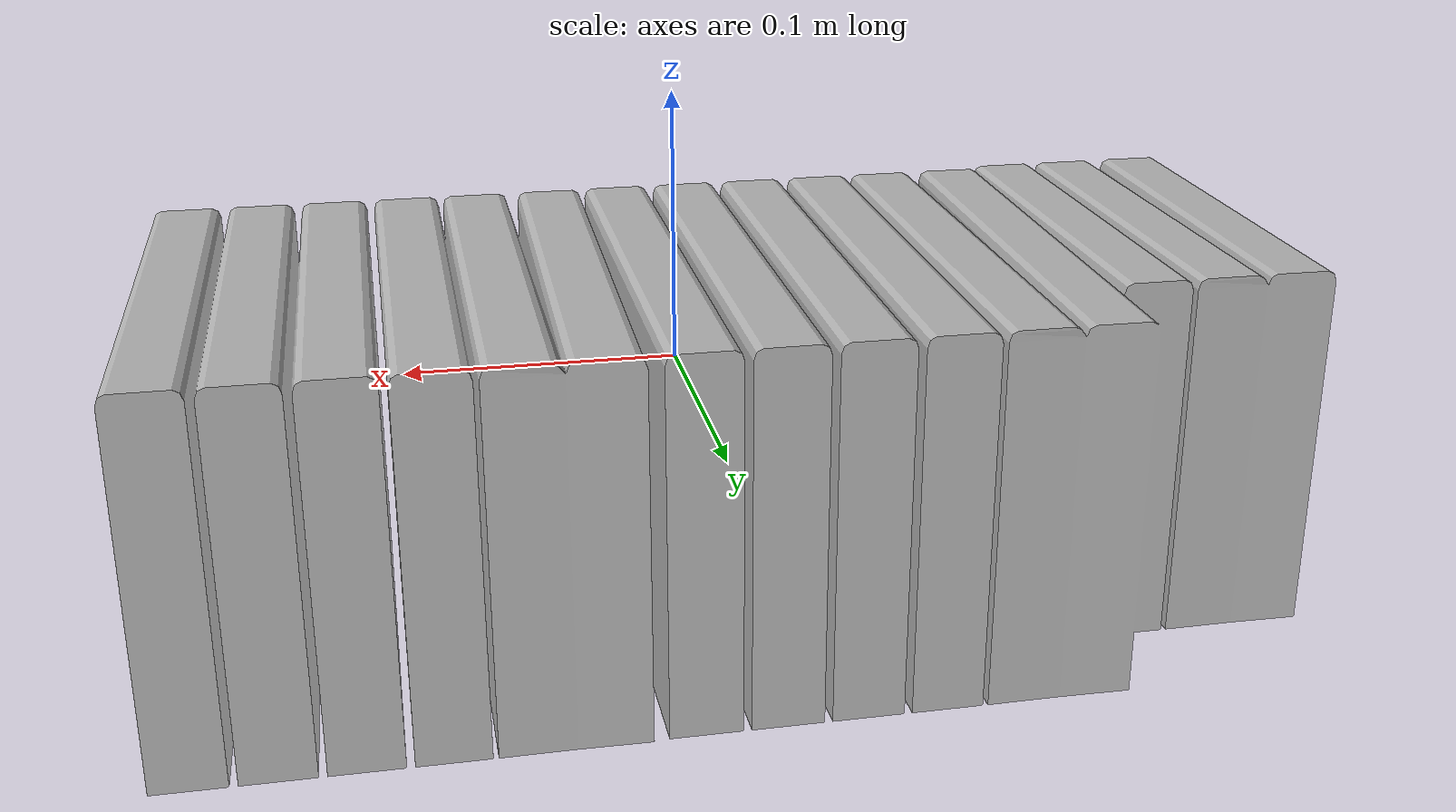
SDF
<?xml version="1.0" ?>
<sdf version="1.4">
  <model name="shelf3_book3_v4">
    <link name="body">
      <pose>0 0 0 0 0 0</pose>
      <inertial>
        <pose>   0.001798   0.085315   0.005927 0 0 0</pose>
        <mass>0.5</mass>
        <inertia>
          <ixx>0.01</ixx>
          <ixy>0</ixy>
          <ixz>0</ixz>
          <iyy>0.01</iyy>
          <iyz>0</iyz>
          <izz>0.01</izz>
        </inertia>
      </inertial>
      <collision name="collision">
        <geometry>
          <mesh>
            <uri>model://bookshelf/shelf3_items/book3_v4/book3_v4.dae</uri>
          </mesh>
        </geometry>
      </collision>
      <visual name="visual">
        <geometry>
          <mesh>
            <uri>model://bookshelf/shelf3_items/book3_v4/book3_v4.dae</uri>
          </mesh>
        </geometry>
      </visual>
    </link>
  </model>
</sdf>
